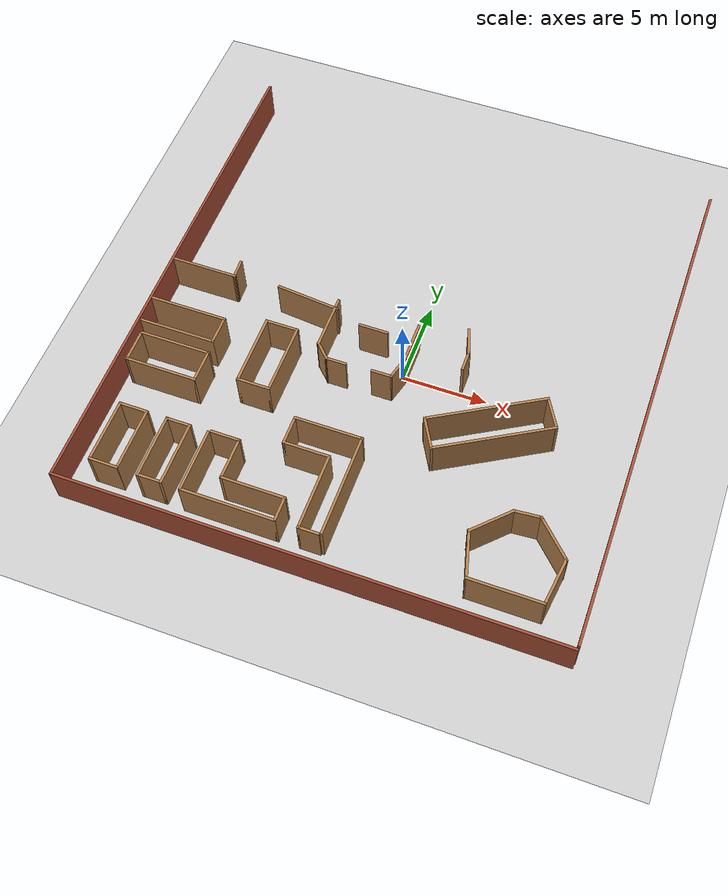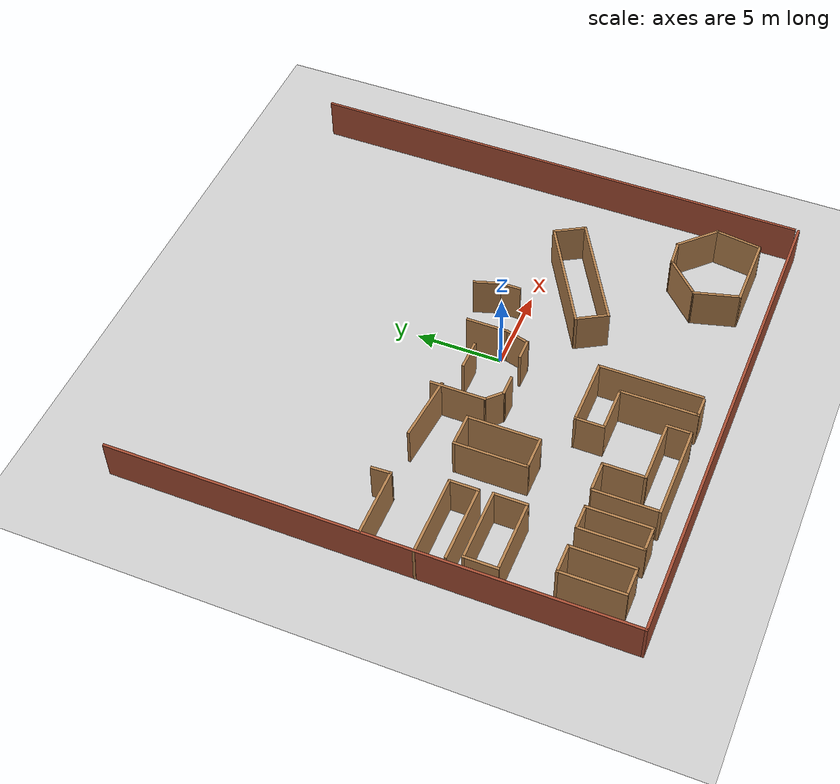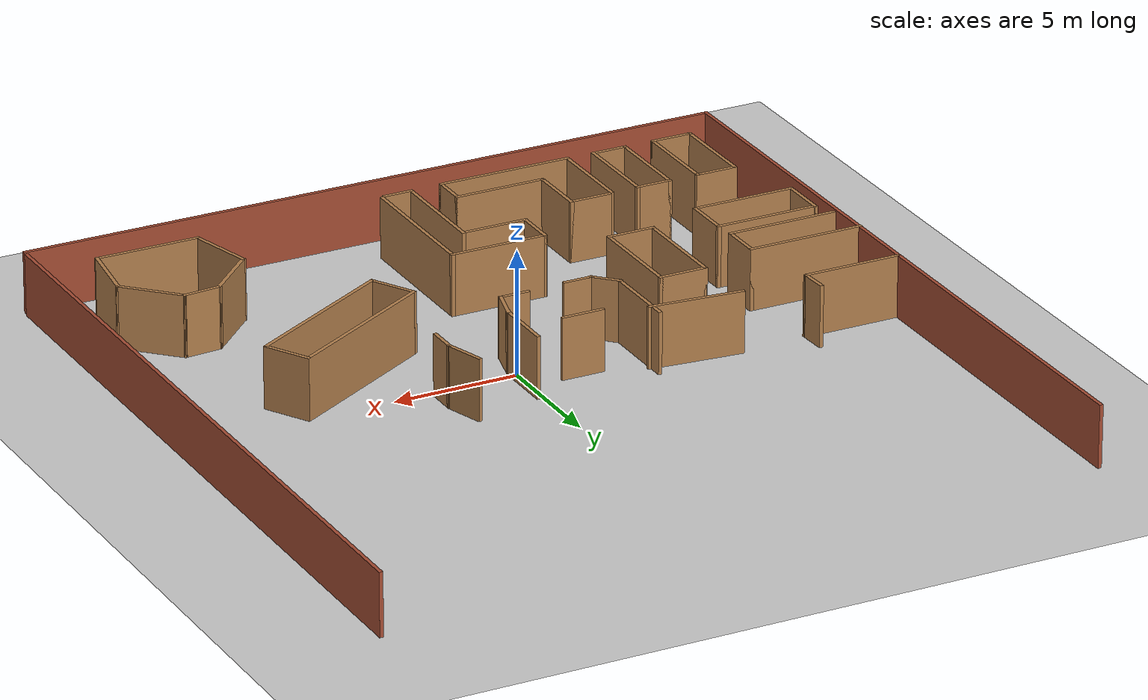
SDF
<sdf version="1.6">
 <world name="default">
  <model name="ground_plane">
   <static>1</static>
   <link name="link">
    <collision name="collision">
     <geometry><plane><normal>0 0 1</normal><size>100 100</size></plane></geometry>
     <surface><friction><ode><mu>100</mu><mu2>50</mu2></ode></friction></surface>
    </collision>
    <visual name="visual">
     <cast_shadows>0</cast_shadows>
     <geometry><plane><normal>0 0 1</normal><size>100 100</size></plane></geometry>
     <material>
      <ambient>1.0 1.0 1.0 1.0</ambient>
      <diffuse>0.8 0.8 0.8 1.0</diffuse>
      <specular>0.01 0.01 0.01 1.000000</specular>
     </material>
    </visual>
   </link>
  </model>
  <model name="NamedLocations">
   <static>true</static>
   <link name="DefaultStart"><pose>-14 0.3 0 0 0 0</pose></link>
  </model>
  <model name="HighNamedLocations">
   <static>true</static>
   <link name="HighDefaultStart"><pose>-14 0.3 0.65 0 0 0</pose></link>
  </model>
  <model name="Untitled">
   <pose>-0.599498 1.70429 0 0 -0 0</pose>
   <link name="Wall_125">
    <collision name="Wall_125_Collision">
     <geometry><box><size>1.68349 0.15 2.5</size></box></geometry>
     <pose>0 0 1.25 0 -0 0</pose>
    </collision>
    <visual name="Wall_125_Visual">
     <pose>0 0 1.25 0 -0 0</pose>
     <geometry><box><size>1.68349 0.15 2.5</size></box></geometry>
     <material>
      <script><uri>file://media/materials/scripts/gazebo.material</uri><name>Gazebo/Wood</name></script>
      <ambient>1 1 1 1</ambient>
     </material>
     <meta><layer>0</layer></meta>
    </visual>
    <pose>3.79481 0.357676 0 0 0 -1.26791</pose>
   </link>
   <link name="Wall_126">
    <collision name="Wall_126_Collision">
     <geometry><box><size>1.24777 0.15 2.5</size></box></geometry>
     <pose>0 0 1.25 0 -0 0</pose>
    </collision>
    <visual name="Wall_126_Visual">
     <pose>0 0 1.25 0 -0 0</pose>
     <geometry><box><size>1.24777 0.15 2.5</size></box></geometry>
     <material>
      <script><uri>file://media/materials/scripts/gazebo.material</uri><name>Gazebo/Wood</name></script>
      <ambient>1 1 1 1</ambient>
     </material>
     <meta><layer>0</layer></meta>
    </visual>
    <pose>4.02351 -0.923051 0 0 0 -1.5708</pose>
   </link>
   <link name="Wall_140">
    <collision name="Wall_140_Collision">
     <geometry><box><size>7 0.15 2.5</size></box></geometry>
     <pose>0 0 1.25 0 -0 0</pose>
    </collision>
    <visual name="Wall_140_Visual">
     <pose>0 0 1.25 0 -0 0</pose>
     <geometry><box><size>7 0.15 2.5</size></box></geometry>
     <material>
      <script><uri>file://media/materials/scripts/gazebo.material</uri><name>Gazebo/Wood</name></script>
      <ambient>1 1 1 1</ambient>
     </material>
     <meta><layer>0</layer></meta>
    </visual>
    <pose>6.04306 -3.45888 0 0 0 -2.61799</pose>
   </link>
   <link name="Wall_141">
    <collision name="Wall_141_Collision">
     <geometry><box><size>2 0.15 2.5</size></box></geometry>
     <pose>0 0 1.25 0 -0 0</pose>
    </collision>
    <visual name="Wall_141_Visual">
     <pose>0 0 1.25 0 -0 0</pose>
     <geometry><box><size>2 0.15 2.5</size></box></geometry>
     <material>
      <script><uri>file://media/materials/scripts/gazebo.material</uri><name>Gazebo/Wood</name></script>
      <ambient>1 1 1 1</ambient>
     </material>
     <meta><layer>0</layer></meta>
    </visual>
    <pose>3.53942 -5.97245 0 0 0 -1.0472</pose>
   </link>
   <link name="Wall_142">
    <collision name="Wall_142_Collision">
     <geometry><box><size>7 0.15 2.5</size></box></geometry>
     <pose>0 0 1.25 0 -0 0</pose>
    </collision>
    <visual name="Wall_142_Visual">
     <pose>0 0 1.25 0 -0 0</pose>
     <geometry><box><size>7 0.15 2.5</size></box></geometry>
     <material>
      <script><uri>file://media/materials/scripts/gazebo.material</uri><name>Gazebo/Wood</name></script>
      <ambient>1 1 1 1</ambient>
     </material>
     <meta><layer>0</layer></meta>
    </visual>
    <pose>6.96806 -5.06102 0 0 -0 0.523599</pose>
   </link>
   <link name="Wall_143">
    <collision name="Wall_143_Collision">
     <geometry><box><size>2 0.15 2.5</size></box></geometry>
     <pose>0 0 1.25 0 -0 0</pose>
    </collision>
    <visual name="Wall_143_Visual">
     <pose>0 0 1.25 0 -0 0</pose>
     <geometry><box><size>2 0.15 2.5</size></box></geometry>
     <material>
      <script><uri>file://media/materials/scripts/gazebo.material</uri><name>Gazebo/Wood</name></script>
      <ambient>1 1 1 1</ambient>
     </material>
     <meta><layer>0</layer></meta>
    </visual>
    <pose>9.4717 -2.54745 0 0 -0 2.0944</pose>
   </link>
   <link name="Wall_20">
    <collision name="Wall_20_Collision">
     <geometry><box><size>2.5 0.15 2.5</size></box></geometry>
     <pose>0 0 1.25 0 -0 0</pose>
    </collision>
    <visual name="Wall_20_Visual">
     <pose>0 0 1.25 0 -0 0</pose>
     <geometry><box><size>2.5 0.15 2.5</size></box></geometry>
     <material>
      <script><uri>file://media/materials/scripts/gazebo.material</uri><name>Gazebo/Wood</name></script>
      <ambient>1 1 1 1</ambient>
     </material>
     <meta><layer>0</layer></meta>
    </visual>
    <pose>0.812254 -0.802886 0 0 0 -1.5708</pose>
   </link>
   <link name="Wall_21">
    <collision name="Wall_21_Collision">
     <geometry><box><size>1.5 0.15 2.5</size></box></geometry>
     <pose>0 0 1.25 0 -0 0</pose>
    </collision>
    <visual name="Wall_21_Visual">
     <pose>0 0 1.25 0 -0 0</pose>
     <geometry><box><size>1.5 0.15 2.5</size></box></geometry>
     <material>
      <script><uri>file://media/materials/scripts/gazebo.material</uri><name>Gazebo/Wood</name></script>
      <ambient>1 1 1 1</ambient>
     </material>
     <meta><layer>0</layer></meta>
    </visual>
    <pose>0.637551 -2.62989 0 0 0 -1.8326</pose>
   </link>
   <link name="Wall_22">
    <collision name="Wall_22_Collision">
     <geometry><box><size>1.25 0.15 2.5</size></box></geometry>
     <pose>0 0 1.25 0 -0 0</pose>
    </collision>
    <visual name="Wall_22_Visual">
     <pose>0 0 1.25 0 -0 0</pose>
     <geometry><box><size>1.25 0.15 2.5</size></box></geometry>
     <material>
      <script><uri>file://media/materials/scripts/gazebo.material</uri><name>Gazebo/Wood</name></script>
      <ambient>1 1 1 1</ambient>
     </material>
     <meta><layer>0</layer></meta>
    </visual>
    <pose>-0.087152 -3.28189 0 0 -0 3.14159</pose>
   </link>
   <link name="Wall_24">
    <collision name="Wall_24_Collision">
     <geometry><box><size>3.25 0.15 2.5</size></box></geometry>
     <pose>0 0 1.25 0 -0 0</pose>
    </collision>
    <visual name="Wall_24_Visual">
     <pose>0 0 1.25 0 -0 0</pose>
     <geometry><box><size>3.25 0.15 2.5</size></box></geometry>
     <material>
      <script><uri>file://media/materials/scripts/gazebo.material</uri><name>Gazebo/Wood</name></script>
      <ambient>1 1 1 1</ambient>
     </material>
     <meta><layer>0</layer></meta>
    </visual>
    <pose>-4.09355 -1.0407 0 0 0 -1.5708</pose>
   </link>
   <link name="Wall_25">
    <collision name="Wall_25_Collision">
     <geometry><box><size>1.25 0.15 2.5</size></box></geometry>
     <pose>0 0 1.25 0 -0 0</pose>
    </collision>
    <visual name="Wall_25_Visual">
     <pose>0 0 1.25 0 -0 0</pose>
     <geometry><box><size>1.25 0.15 2.5</size></box></geometry>
     <material>
      <script><uri>file://media/materials/scripts/gazebo.material</uri><name>Gazebo/Wood</name></script>
      <ambient>1 1 1 1</ambient>
     </material>
     <meta><layer>0</layer></meta>
    </visual>
    <pose>-3.70464 -2.97961 0 0 0 -0.785398</pose>
   </link>
   <link name="Wall_26">
    <collision name="Wall_26_Collision">
     <geometry><box><size>1.25 0.15 2.5</size></box></geometry>
     <pose>0 0 1.25 0 -0 0</pose>
    </collision>
    <visual name="Wall_26_Visual">
     <pose>0 0 1.25 0 -0 0</pose>
     <geometry><box><size>1.25 0.15 2.5</size></box></geometry>
     <material>
      <script><uri>file://media/materials/scripts/gazebo.material</uri><name>Gazebo/Wood</name></script>
      <ambient>1 1 1 1</ambient>
     </material>
     <meta><layer>0</layer></meta>
    </visual>
    <pose>-2.76573 -3.36851 0 0 -0 0</pose>
   </link>
   <link name="Wall_28">
    <collision name="Wall_28_Collision">
     <geometry><box><size>1.75 0.15 2.5</size></box></geometry>
     <pose>0 0 1.25 0 -0 0</pose>
    </collision>
    <visual name="Wall_28_Visual">
     <pose>0 0 1.25 0 -0 0</pose>
     <geometry><box><size>1.75 0.15 2.5</size></box></geometry>
     <material>
      <script><uri>file://media/materials/scripts/gazebo.material</uri><name>Gazebo/Wood</name></script>
      <ambient>1 1 1 1</ambient>
     </material>
     <meta><layer>0</layer></meta>
    </visual>
    <pose>-1.54349 -0.644148 0 0 -0 0</pose>
   </link>
   <link name="Wall_30">
    <collision name="Wall_30_Collision">
     <geometry><box><size>3.75 0.15 2.5</size></box></geometry>
     <pose>0 0 1.25 0 -0 0</pose>
    </collision>
    <visual name="Wall_30_Visual">
     <pose>0 0 1.25 0 -0 0</pose>
     <geometry><box><size>3.75 0.15 2.5</size></box></geometry>
     <material>
      <script><uri>file://media/materials/scripts/gazebo.material</uri><name>Gazebo/Wood</name></script>
      <ambient>1 1 1 1</ambient>
     </material>
     <meta><layer>0</layer></meta>
    </visual>
    <pose>-12.8041 -11.632 0 0 0 -1.5708</pose>
   </link>
   <link name="Wall_31">
    <collision name="Wall_31_Collision">
     <geometry><box><size>1.75 0.15 2.5</size></box></geometry>
     <pose>0 0 1.25 0 -0 0</pose>
    </collision>
    <visual name="Wall_31_Visual">
     <pose>0 0 1.25 0 -0 0</pose>
     <geometry><box><size>1.75 0.15 2.5</size></box></geometry>
     <material>
      <script><uri>file://media/materials/scripts/gazebo.material</uri><name>Gazebo/Wood</name></script>
      <ambient>1 1 1 1</ambient>
     </material>
     <meta><layer>0</layer></meta>
    </visual>
    <pose>-12.0041 -13.432 0 0 -0 0</pose>
   </link>
   <link name="Wall_32">
    <collision name="Wall_32_Collision">
     <geometry><box><size>3.75 0.15 2.5</size></box></geometry>
     <pose>0 0 1.25 0 -0 0</pose>
    </collision>
    <visual name="Wall_32_Visual">
     <pose>0 0 1.25 0 -0 0</pose>
     <geometry><box><size>3.75 0.15 2.5</size></box></geometry>
     <material>
      <script><uri>file://media/materials/scripts/gazebo.material</uri><name>Gazebo/Wood</name></script>
      <ambient>1 1 1 1</ambient>
     </material>
     <meta><layer>0</layer></meta>
    </visual>
    <pose>-11.2041 -11.632 0 0 -0 1.5708</pose>
   </link>
   <link name="Wall_33">
    <collision name="Wall_33_Collision">
     <geometry><box><size>1.75 0.15 2.5</size></box></geometry>
     <pose>0 0 1.25 0 -0 0</pose>
    </collision>
    <visual name="Wall_33_Visual">
     <pose>0 0 1.25 0 -0 0</pose>
     <geometry><box><size>1.75 0.15 2.5</size></box></geometry>
     <material>
      <script><uri>file://media/materials/scripts/gazebo.material</uri><name>Gazebo/Wood</name></script>
      <ambient>1 1 1 1</ambient>
     </material>
     <meta><layer>0</layer></meta>
    </visual>
    <pose>-12.0041 -9.83197 0 0 -0 3.14159</pose>
   </link>
   <link name="Wall_35">
    <collision name="Wall_35_Collision">
     <geometry><box><size>3.75 0.15 2.5</size></box></geometry>
     <pose>0 0 1.25 0 -0 0</pose>
    </collision>
    <visual name="Wall_35_Visual">
     <pose>0 0 1.25 0 -0 0</pose>
     <geometry><box><size>3.75 0.15 2.5</size></box></geometry>
     <material>
      <script><uri>file://media/materials/scripts/gazebo.material</uri><name>Gazebo/Wood</name></script>
      <ambient>1 1 1 1</ambient>
     </material>
     <meta><layer>0</layer></meta>
    </visual>
    <pose>-10.0046 -11.6426 0 0 0 -1.5708</pose>
   </link>
   <link name="Wall_36">
    <collision name="Wall_36_Collision">
     <geometry><box><size>1.5 0.15 2.5</size></box></geometry>
     <pose>0 0 1.25 0 -0 0</pose>
    </collision>
    <visual name="Wall_36_Visual">
     <pose>0 0 1.25 0 -0 0</pose>
     <geometry><box><size>1.5 0.15 2.5</size></box></geometry>
     <material>
      <script><uri>file://media/materials/scripts/gazebo.material</uri><name>Gazebo/Wood</name></script>
      <ambient>1 1 1 1</ambient>
     </material>
     <meta><layer>0</layer></meta>
    </visual>
    <pose>-9.32959 -13.4426 0 0 -0 0</pose>
   </link>
   <link name="Wall_37">
    <collision name="Wall_37_Collision">
     <geometry><box><size>3.75 0.15 2.5</size></box></geometry>
     <pose>0 0 1.25 0 -0 0</pose>
    </collision>
    <visual name="Wall_37_Visual">
     <pose>0 0 1.25 0 -0 0</pose>
     <geometry><box><size>3.75 0.15 2.5</size></box></geometry>
     <material>
      <script><uri>file://media/materials/scripts/gazebo.material</uri><name>Gazebo/Wood</name></script>
      <ambient>1 1 1 1</ambient>
     </material>
     <meta><layer>0</layer></meta>
    </visual>
    <pose>-8.65459 -11.6426 0 0 -0 1.5708</pose>
   </link>
   <link name="Wall_38">
    <collision name="Wall_38_Collision">
     <geometry><box><size>1.5 0.15 2.5</size></box></geometry>
     <pose>0 0 1.25 0 -0 0</pose>
    </collision>
    <visual name="Wall_38_Visual">
     <pose>0 0 1.25 0 -0 0</pose>
     <geometry><box><size>1.5 0.15 2.5</size></box></geometry>
     <material>
      <script><uri>file://media/materials/scripts/gazebo.material</uri><name>Gazebo/Wood</name></script>
      <ambient>1 1 1 1</ambient>
     </material>
     <meta><layer>0</layer></meta>
    </visual>
    <pose>-9.32959 -9.84261 0 0 -0 3.14159</pose>
   </link>
   <link name="Wall_4">
    <collision name="Wall_4_Collision">
     <geometry><box><size>29.75 0.15 2.5</size></box></geometry>
     <pose>0 0 1.25 0 -0 0</pose>
    </collision>
    <visual name="Wall_4_Visual">
     <pose>0 0 1.25 0 -0 0</pose>
     <geometry><box><size>29.75 0.15 2.5</size></box></geometry>
     <material>
      <script><uri>file://media/materials/scripts/gazebo.material</uri><name>Gazebo/Bricks</name></script>
      <ambient>1 1 1 1</ambient>
     </material>
     <meta><layer>0</layer></meta>
    </visual>
    <pose>14.3279 0.124759 0 0 0 -1.5708</pose>
   </link>
   <link name="Wall_40">
    <collision name="Wall_40_Collision">
     <geometry><box><size>3.75 0.15 2.5</size></box></geometry>
     <pose>0 0 1.25 0 -0 0</pose>
    </collision>
    <visual name="Wall_40_Visual">
     <pose>0 0 1.25 0 -0 0</pose>
     <geometry><box><size>3.75 0.15 2.5</size></box></geometry>
     <material>
      <script><uri>file://media/materials/scripts/gazebo.material</uri><name>Gazebo/Wood</name></script>
      <ambient>1 1 1 1</ambient>
     </material>
     <meta><layer>0</layer></meta>
    </visual>
    <pose>-7.54896 -11.6772 0 0 0 -1.5708</pose>
   </link>
   <link name="Wall_41">
    <collision name="Wall_41_Collision">
     <geometry><box><size>5.5 0.15 2.5</size></box></geometry>
     <pose>0 0 1.25 0 -0 0</pose>
    </collision>
    <visual name="Wall_41_Visual">
     <pose>0 0 1.25 0 -0 0</pose>
     <geometry><box><size>5.5 0.15 2.5</size></box></geometry>
     <material>
      <script><uri>file://media/materials/scripts/gazebo.material</uri><name>Gazebo/Wood</name></script>
      <ambient>1 1 1 1</ambient>
     </material>
     <meta><layer>0</layer></meta>
    </visual>
    <pose>-4.87397 -13.4772 0 0 -0 0</pose>
   </link>
   <link name="Wall_42">
    <collision name="Wall_42_Collision">
     <geometry><box><size>1.5 0.15 2.5</size></box></geometry>
     <pose>0 0 1.25 0 -0 0</pose>
    </collision>
    <visual name="Wall_42_Visual">
     <pose>0 0 1.25 0 -0 0</pose>
     <geometry><box><size>1.5 0.15 2.5</size></box></geometry>
     <material>
      <script><uri>file://media/materials/scripts/gazebo.material</uri><name>Gazebo/Wood</name></script>
      <ambient>1 1 1 1</ambient>
     </material>
     <meta><layer>0</layer></meta>
    </visual>
    <pose>-2.19897 -12.8022 0 0 -0 1.5708</pose>
   </link>
   <link name="Wall_43">
    <collision name="Wall_43_Collision">
     <geometry><box><size>3.75 0.15 2.5</size></box></geometry>
     <pose>0 0 1.25 0 -0 0</pose>
    </collision>
    <visual name="Wall_43_Visual">
     <pose>0 0 1.25 0 -0 0</pose>
     <geometry><box><size>3.75 0.15 2.5</size></box></geometry>
     <material>
      <script><uri>file://media/materials/scripts/gazebo.material</uri><name>Gazebo/Wood</name></script>
      <ambient>1 1 1 1</ambient>
     </material>
     <meta><layer>0</layer></meta>
    </visual>
    <pose>-3.99897 -12.1272 0 0 -0 3.14159</pose>
   </link>
   <link name="Wall_44">
    <collision name="Wall_44_Collision">
     <geometry><box><size>2.5 0.15 2.5</size></box></geometry>
     <pose>0 0 1.25 0 -0 0</pose>
    </collision>
    <visual name="Wall_44_Visual">
     <pose>0 0 1.25 0 -0 0</pose>
     <geometry><box><size>2.5 0.15 2.5</size></box></geometry>
     <material>
      <script><uri>file://media/materials/scripts/gazebo.material</uri><name>Gazebo/Wood</name></script>
      <ambient>1 1 1 1</ambient>
     </material>
     <meta><layer>0</layer></meta>
    </visual>
    <pose>-5.79897 -10.9522 0 0 -0 1.5708</pose>
   </link>
   <link name="Wall_45">
    <collision name="Wall_45_Collision">
     <geometry><box><size>1.75 0.15 2.5</size></box></geometry>
     <pose>0 0 1.25 0 -0 0</pose>
    </collision>
    <visual name="Wall_45_Visual">
     <pose>0 0 1.25 0 -0 0</pose>
     <geometry><box><size>1.75 0.15 2.5</size></box></geometry>
     <material>
      <script><uri>file://media/materials/scripts/gazebo.material</uri><name>Gazebo/Wood</name></script>
      <ambient>1 1 1 1</ambient>
     </material>
     <meta><layer>0</layer></meta>
    </visual>
    <pose>-6.59897 -9.7772 0 0 -0 3.14159</pose>
   </link>
   <link name="Wall_47">
    <collision name="Wall_47_Collision">
     <geometry><box><size>4 0.15 2.5</size></box></geometry>
     <pose>0 0 1.25 0 -0 0</pose>
    </collision>
    <visual name="Wall_47_Visual">
     <pose>0 0 1.25 0 -0 0</pose>
     <geometry><box><size>4 0.15 2.5</size></box></geometry>
     <material>
      <script><uri>file://media/materials/scripts/gazebo.material</uri><name>Gazebo/Wood</name></script>
      <ambient>1 1 1 1</ambient>
     </material>
     <meta><layer>0</layer></meta>
    </visual>
    <pose>-12.3337 0.118216 0 0 -0 0</pose>
   </link>
   <link name="Wall_49">
    <collision name="Wall_49_Collision">
     <geometry><box><size>3.83242 0.15 2.5</size></box></geometry>
     <pose>0 0 1.25 0 -0 0</pose>
    </collision>
    <visual name="Wall_49_Visual">
     <pose>0 0 1.25 0 -0 0</pose>
     <geometry><box><size>3.83242 0.15 2.5</size></box></geometry>
     <material>
      <script><uri>file://media/materials/scripts/gazebo.material</uri><name>Gazebo/Wood</name></script>
      <ambient>1 1 1 1</ambient>
     </material>
     <meta><layer>0</layer></meta>
    </visual>
    <pose>-5.81966 0.118216 0 0 0 -0.094061</pose>
   </link>
   <link name="Wall_51">
    <collision name="Wall_51_Collision">
     <geometry><box><size>1.18858 0.15 2.5</size></box></geometry>
     <pose>0 0 1.25 0 -0 0</pose>
    </collision>
    <visual name="Wall_51_Visual">
     <pose>0 0 1.25 0 -0 0</pose>
     <geometry><box><size>1.18858 0.15 2.5</size></box></geometry>
     <material>
      <script><uri>file://media/materials/scripts/gazebo.material</uri><name>Gazebo/Wood</name></script>
      <ambient>1 1 1 1</ambient>
     </material>
     <meta><layer>0</layer></meta>
    </visual>
    <pose>-10.4314 0.637009 0 0 -0 1.61464</pose>
   </link>
   <link name="Wall_6">
    <collision name="Wall_6_Collision">
     <geometry><box><size>28.75 0.15 2.5</size></box></geometry>
     <pose>0 0 1.25 0 -0 0</pose>
    </collision>
    <visual name="Wall_6_Visual">
     <pose>0 0 1.25 0 -0 0</pose>
     <geometry><box><size>28.75 0.15 2.5</size></box></geometry>
     <material>
      <script><uri>file://media/materials/scripts/gazebo.material</uri><name>Gazebo/Bricks</name></script>
      <ambient>1 1 1 1</ambient>
     </material>
     <meta><layer>0</layer></meta>
    </visual>
    <pose>-0.016371 -14.9248 0 0 -0 3.14159</pose>
   </link>
   <link name="Wall_61">
    <collision name="Wall_61_Collision">
     <geometry><box><size>4.25 0.15 2.5</size></box></geometry>
     <pose>0 0 1.25 0 -0 0</pose>
    </collision>
    <visual name="Wall_61_Visual">
     <pose>0 0 1.25 0 -0 0</pose>
     <geometry><box><size>4.25 0.15 2.5</size></box></geometry>
     <material>
      <script><uri>file://media/materials/scripts/gazebo.material</uri><name>Gazebo/Wood</name></script>
      <ambient>1 1 1 1</ambient>
     </material>
     <meta><layer>0</layer></meta>
    </visual>
    <pose>-7.41062 -4.21447 0 0 0 -1.5708</pose>
   </link>
   <link name="Wall_62">
    <collision name="Wall_62_Collision">
     <geometry><box><size>2 0.15 2.5</size></box></geometry>
     <pose>0 0 1.25 0 -0 0</pose>
    </collision>
    <visual name="Wall_62_Visual">
     <pose>0 0 1.25 0 -0 0</pose>
     <geometry><box><size>2 0.15 2.5</size></box></geometry>
     <material>
      <script><uri>file://media/materials/scripts/gazebo.material</uri><name>Gazebo/Wood</name></script>
      <ambient>1 1 1 1</ambient>
     </material>
     <meta><layer>0</layer></meta>
    </visual>
    <pose>-6.48562 -6.26447 0 0 -0 0</pose>
   </link>
   <link name="Wall_63">
    <collision name="Wall_63_Collision">
     <geometry><box><size>4.25 0.15 2.5</size></box></geometry>
     <pose>0 0 1.25 0 -0 0</pose>
    </collision>
    <visual name="Wall_63_Visual">
     <pose>0 0 1.25 0 -0 0</pose>
     <geometry><box><size>4.25 0.15 2.5</size></box></geometry>
     <material>
      <script><uri>file://media/materials/scripts/gazebo.material</uri><name>Gazebo/Wood</name></script>
      <ambient>1 1 1 1</ambient>
     </material>
     <meta><layer>0</layer></meta>
    </visual>
    <pose>-5.56062 -4.21447 0 0 -0 1.5708</pose>
   </link>
   <link name="Wall_64">
    <collision name="Wall_64_Collision">
     <geometry><box><size>2 0.15 2.5</size></box></geometry>
     <pose>0 0 1.25 0 -0 0</pose>
    </collision>
    <visual name="Wall_64_Visual">
     <pose>0 0 1.25 0 -0 0</pose>
     <geometry><box><size>2 0.15 2.5</size></box></geometry>
     <material>
      <script><uri>file://media/materials/scripts/gazebo.material</uri><name>Gazebo/Wood</name></script>
      <ambient>1 1 1 1</ambient>
     </material>
     <meta><layer>0</layer></meta>
    </visual>
    <pose>-6.48562 -2.16447 0 0 -0 3.14159</pose>
   </link>
   <link name="Wall_66">
    <collision name="Wall_66_Collision">
     <geometry><box><size>4.75 0.15 2.5</size></box></geometry>
     <pose>0 0 1.25 0 -0 0</pose>
    </collision>
    <visual name="Wall_66_Visual">
     <pose>0 0 1.25 0 -0 0</pose>
     <geometry><box><size>4.75 0.15 2.5</size></box></geometry>
     <material>
      <script><uri>file://media/materials/scripts/gazebo.material</uri><name>Gazebo/Wood</name></script>
      <ambient>1 1 1 1</ambient>
     </material>
     <meta><layer>0</layer></meta>
    </visual>
    <pose>-12.0279 -2.8562 0 0 -0 0</pose>
   </link>
   <link name="Wall_67">
    <collision name="Wall_67_Collision">
     <geometry><box><size>1.75 0.15 2.5</size></box></geometry>
     <pose>0 0 1.25 0 -0 0</pose>
    </collision>
    <visual name="Wall_67_Visual">
     <pose>0 0 1.25 0 -0 0</pose>
     <geometry><box><size>1.75 0.15 2.5</size></box></geometry>
     <material>
      <script><uri>file://media/materials/scripts/gazebo.material</uri><name>Gazebo/Wood</name></script>
      <ambient>1 1 1 1</ambient>
     </material>
     <meta><layer>0</layer></meta>
    </visual>
    <pose>-9.72786 -3.6562 0 0 0 -1.5708</pose>
   </link>
   <link name="Wall_68">
    <collision name="Wall_68_Collision">
     <geometry><box><size>4.5 0.15 2.5</size></box></geometry>
     <pose>0 0 1.25 0 -0 0</pose>
    </collision>
    <visual name="Wall_68_Visual">
     <pose>0 0 1.25 0 -0 0</pose>
     <geometry><box><size>4.5 0.15 2.5</size></box></geometry>
     <material>
      <script><uri>file://media/materials/scripts/gazebo.material</uri><name>Gazebo/Wood</name></script>
      <ambient>1 1 1 1</ambient>
     </material>
     <meta><layer>0</layer></meta>
    </visual>
    <pose>-11.9029 -4.4562 0 0 -0 3.14159</pose>
   </link>
   <link name="Wall_70">
    <collision name="Wall_70_Collision">
     <geometry><box><size>2 0.15 2.5</size></box></geometry>
     <pose>0 0 1.25 0 -0 0</pose>
    </collision>
    <visual name="Wall_70_Visual">
     <pose>0 0 1.25 0 -0 0</pose>
     <geometry><box><size>2 0.15 2.5</size></box></geometry>
     <material>
      <script><uri>file://media/materials/scripts/gazebo.material</uri><name>Gazebo/Wood</name></script>
      <ambient>1 1 1 1</ambient>
     </material>
     <meta><layer>0</layer></meta>
    </visual>
    <pose>-13.7399 -6.16765 0 0 0 -1.5708</pose>
   </link>
   <link name="Wall_71">
    <collision name="Wall_71_Collision">
     <geometry><box><size>4.25 0.15 2.5</size></box></geometry>
     <pose>0 0 1.25 0 -0 0</pose>
    </collision>
    <visual name="Wall_71_Visual">
     <pose>0 0 1.25 0 -0 0</pose>
     <geometry><box><size>4.25 0.15 2.5</size></box></geometry>
     <material>
      <script><uri>file://media/materials/scripts/gazebo.material</uri><name>Gazebo/Wood</name></script>
      <ambient>1 1 1 1</ambient>
     </material>
     <meta><layer>0</layer></meta>
    </visual>
    <pose>-11.6899 -7.09265 0 0 -0 0</pose>
   </link>
   <link name="Wall_72">
    <collision name="Wall_72_Collision">
     <geometry><box><size>2 0.15 2.5</size></box></geometry>
     <pose>0 0 1.25 0 -0 0</pose>
    </collision>
    <visual name="Wall_72_Visual">
     <pose>0 0 1.25 0 -0 0</pose>
     <geometry><box><size>2 0.15 2.5</size></box></geometry>
     <material>
      <script><uri>file://media/materials/scripts/gazebo.material</uri><name>Gazebo/Wood</name></script>
      <ambient>1 1 1 1</ambient>
     </material>
     <meta><layer>0</layer></meta>
    </visual>
    <pose>-9.6399 -6.16765 0 0 -0 1.5708</pose>
   </link>
   <link name="Wall_73">
    <collision name="Wall_73_Collision">
     <geometry><box><size>4.25 0.15 2.5</size></box></geometry>
     <pose>0 0 1.25 0 -0 0</pose>
    </collision>
    <visual name="Wall_73_Visual">
     <pose>0 0 1.25 0 -0 0</pose>
     <geometry><box><size>4.25 0.15 2.5</size></box></geometry>
     <material>
      <script><uri>file://media/materials/scripts/gazebo.material</uri><name>Gazebo/Wood</name></script>
      <ambient>1 1 1 1</ambient>
     </material>
     <meta><layer>0</layer></meta>
    </visual>
    <pose>-11.6899 -5.24265 0 0 -0 3.14159</pose>
   </link>
   <link name="Wall_75">
    <collision name="Wall_75_Collision">
     <geometry><box><size>2.75 0.15 2.5</size></box></geometry>
     <pose>0 0 1.25 0 -0 0</pose>
    </collision>
    <visual name="Wall_75_Visual">
     <pose>0 0 1.25 0 -0 0</pose>
     <geometry><box><size>2.75 0.15 2.5</size></box></geometry>
     <material>
      <script><uri>file://media/materials/scripts/gazebo.material</uri><name>Gazebo/Wood</name></script>
      <ambient>1 1 1 1</ambient>
     </material>
     <meta><layer>0</layer></meta>
    </visual>
    <pose>8.30611 -9.75885 0 0 0 -2.35619</pose>
   </link>
   <link name="Wall_76">
    <collision name="Wall_76_Collision">
     <geometry><box><size>2.75 0.15 2.5</size></box></geometry>
     <pose>0 0 1.25 0 -0 0</pose>
    </collision>
    <visual name="Wall_76_Visual">
     <pose>0 0 1.25 0 -0 0</pose>
     <geometry><box><size>2.75 0.15 2.5</size></box></geometry>
     <material>
      <script><uri>file://media/materials/scripts/gazebo.material</uri><name>Gazebo/Wood</name></script>
      <ambient>1 1 1 1</ambient>
     </material>
     <meta><layer>0</layer></meta>
    </visual>
    <pose>7.72333 -11.9338 0 0 0 -1.309</pose>
   </link>
   <link name="Wall_77">
    <collision name="Wall_77_Collision">
     <geometry><box><size>4.25 0.15 2.5</size></box></geometry>
     <pose>0 0 1.25 0 -0 0</pose>
    </collision>
    <visual name="Wall_77_Visual">
     <pose>0 0 1.25 0 -0 0</pose>
     <geometry><box><size>4.25 0.15 2.5</size></box></geometry>
     <material>
      <script><uri>file://media/materials/scripts/gazebo.material</uri><name>Gazebo/Wood</name></script>
      <ambient>1 1 1 1</ambient>
     </material>
     <meta><layer>0</layer></meta>
    </visual>
    <pose>10.1098 -13.1895 0 0 -0 0</pose>
   </link>
   <link name="Wall_78">
    <collision name="Wall_78_Collision">
     <geometry><box><size>2.79401 0.15 2.5</size></box></geometry>
     <pose>0 0 1.25 0 -0 0</pose>
    </collision>
    <visual name="Wall_78_Visual">
     <pose>0 0 1.25 0 -0 0</pose>
     <geometry><box><size>2.79401 0.15 2.5</size></box></geometry>
     <material>
      <script><uri>file://media/materials/scripts/gazebo.material</uri><name>Gazebo/Wood</name></script>
      <ambient>1 1 1 1</ambient>
     </material>
     <meta><layer>0</layer></meta>
    </visual>
    <pose>12.3354 -11.8792 0 0 -0 1.43756</pose>
   </link>
   <link name="Wall_79">
    <collision name="Wall_79_Collision">
     <geometry><box><size>2.75 0.15 2.5</size></box></geometry>
     <pose>0 0 1.25 0 -0 0</pose>
    </collision>
    <visual name="Wall_79_Visual">
     <pose>0 0 1.25 0 -0 0</pose>
     <geometry><box><size>2.75 0.15 2.5</size></box></geometry>
     <material>
      <script><uri>file://media/materials/scripts/gazebo.material</uri><name>Gazebo/Wood</name></script>
      <ambient>1 1 1 1</ambient>
     </material>
     <meta><layer>0</layer></meta>
    </visual>
    <pose>11.5918 -9.64968 0 0 -0 2.35619</pose>
   </link>
   <link name="Wall_8">
    <collision name="Wall_8_Collision">
     <geometry><box><size>29.75 0.15 2.5</size></box></geometry>
     <pose>0 0 1.25 0 -0 0</pose>
    </collision>
    <visual name="Wall_8_Visual">
     <pose>0 0 1.25 0 -0 0</pose>
     <geometry><box><size>29.75 0.15 2.5</size></box></geometry>
     <material>
      <script><uri>file://media/materials/scripts/gazebo.material</uri><name>Gazebo/Bricks</name></script>
      <ambient>1 1 1 1</ambient>
     </material>
     <meta><layer>0</layer></meta>
    </visual>
    <pose>-14.3164 -0.124759 0 0 -0 1.5708</pose>
   </link>
   <link name="Wall_80">
    <collision name="Wall_80_Collision">
     <geometry><box><size>1.60132 0.15 2.5</size></box></geometry>
     <pose>0 0 1.25 0 -0 0</pose>
    </collision>
    <visual name="Wall_80_Visual">
     <pose>0 0 1.25 0 -0 0</pose>
     <geometry><box><size>1.60132 0.15 2.5</size></box></geometry>
     <material>
      <script><uri>file://media/materials/scripts/gazebo.material</uri><name>Gazebo/Wood</name></script>
      <ambient>1 1 1 1</ambient>
     </material>
     <meta><layer>0</layer></meta>
    </visual>
    <pose>9.94895 -8.78503 0 0 0 -3.0663</pose>
   </link>
   <link name="Wall_82">
    <collision name="Wall_82_Collision">
     <geometry><box><size>6 0.15 2.5</size></box></geometry>
     <pose>0 0 1.25 0 -0 0</pose>
    </collision>
    <visual name="Wall_82_Visual">
     <pose>0 0 1.25 0 -0 0</pose>
     <geometry><box><size>6 0.15 2.5</size></box></geometry>
     <material>
      <script><uri>file://media/materials/scripts/gazebo.material</uri><name>Gazebo/Wood</name></script>
      <ambient>1 1 1 1</ambient>
     </material>
     <meta><layer>0</layer></meta>
    </visual>
    <pose>0.336689 -10.4108 0 0 -0 1.5708</pose>
   </link>
   <link name="Wall_85">
    <collision name="Wall_85_Collision">
     <geometry><box><size>4 0.15 2.5</size></box></geometry>
     <pose>0 0 1.25 0 -0 0</pose>
    </collision>
    <visual name="Wall_85_Visual">
     <pose>0 0 1.25 0 -0 0</pose>
     <geometry><box><size>4 0.15 2.5</size></box></geometry>
     <material>
      <script><uri>file://media/materials/scripts/gazebo.material</uri><name>Gazebo/Wood</name></script>
      <ambient>1 1 1 1</ambient>
     </material>
     <meta><layer>0</layer></meta>
    </visual>
    <pose>-1.58831 -7.48582 0 0 -0 3.14159</pose>
   </link>
   <link name="Wall_86">
    <collision name="Wall_86_Collision">
     <geometry><box><size>1.75 0.15 2.5</size></box></geometry>
     <pose>0 0 1.25 0 -0 0</pose>
    </collision>
    <visual name="Wall_86_Visual">
     <pose>0 0 1.25 0 -0 0</pose>
     <geometry><box><size>1.75 0.15 2.5</size></box></geometry>
     <material>
      <script><uri>file://media/materials/scripts/gazebo.material</uri><name>Gazebo/Wood</name></script>
      <ambient>1 1 1 1</ambient>
     </material>
     <meta><layer>0</layer></meta>
    </visual>
    <pose>-3.51331 -8.28582 0 0 0 -1.5708</pose>
   </link>
   <link name="Wall_87">
    <collision name="Wall_87_Collision">
     <geometry><box><size>2.75 0.15 2.5</size></box></geometry>
     <pose>0 0 1.25 0 -0 0</pose>
    </collision>
    <visual name="Wall_87_Visual">
     <pose>0 0 1.25 0 -0 0</pose>
     <geometry><box><size>2.75 0.15 2.5</size></box></geometry>
     <material>
      <script><uri>file://media/materials/scripts/gazebo.material</uri><name>Gazebo/Wood</name></script>
      <ambient>1 1 1 1</ambient>
     </material>
     <meta><layer>0</layer></meta>
    </visual>
    <pose>-2.21331 -9.08582 0 0 -0 0</pose>
   </link>
   <link name="Wall_88">
    <collision name="Wall_88_Collision">
     <geometry><box><size>4.5 0.15 2.5</size></box></geometry>
     <pose>0 0 1.25 0 -0 0</pose>
    </collision>
    <visual name="Wall_88_Visual">
     <pose>0 0 1.25 0 -0 0</pose>
     <geometry><box><size>4.5 0.15 2.5</size></box></geometry>
     <material>
      <script><uri>file://media/materials/scripts/gazebo.material</uri><name>Gazebo/Wood</name></script>
      <ambient>1 1 1 1</ambient>
     </material>
     <meta><layer>0</layer></meta>
    </visual>
    <pose>-0.913311 -11.2608 0 0 0 -1.5708</pose>
   </link>
   <link name="Wall_89">
    <collision name="Wall_89_Collision">
     <geometry><box><size>1.25 0.15 2.5</size></box></geometry>
     <pose>0 0 1.25 0 -0 0</pose>
    </collision>
    <visual name="Wall_89_Visual">
     <pose>0 0 1.25 0 -0 0</pose>
     <geometry><box><size>1.25 0.15 2.5</size></box></geometry>
     <material>
      <script><uri>file://media/materials/scripts/gazebo.material</uri><name>Gazebo/Wood</name></script>
      <ambient>1 1 1 1</ambient>
     </material>
     <meta><layer>0</layer></meta>
    </visual>
    <pose>-0.363311 -13.4358 0 0 -0 0</pose>
   </link>
   <static>1</static>
  </model>
 </world>
</sdf>
